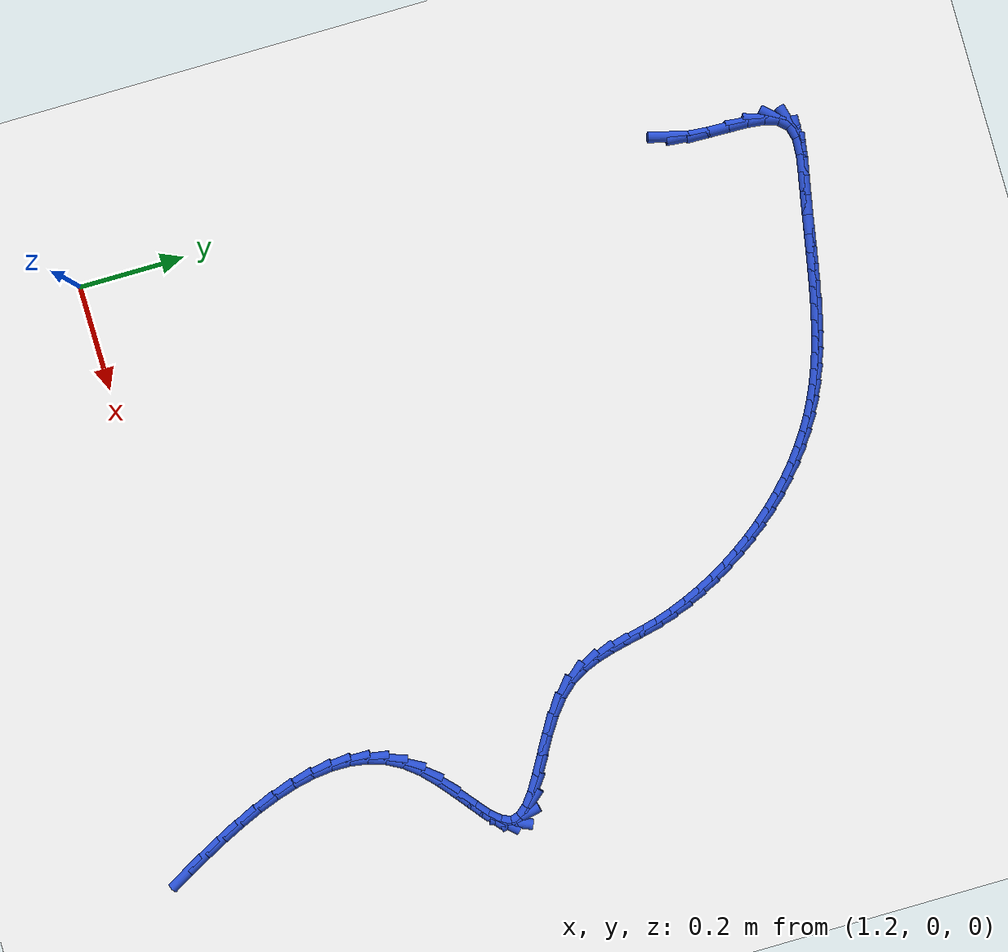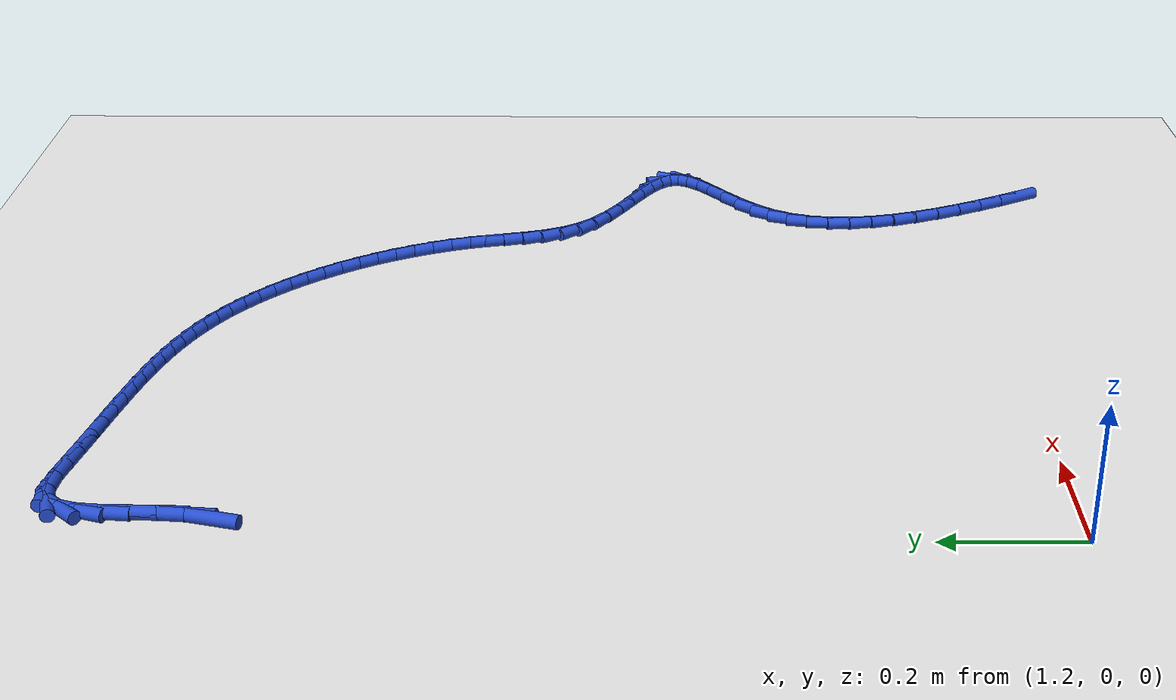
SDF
<sdf version="1.6">
 <world name="default">
  <model name="ground_plane">
   <static>1</static>
   <link name="link">
    <collision name="collision">
     <geometry><plane><normal>0 0 1</normal><size>100 100</size></plane></geometry>
     <surface><friction><ode><mu>100</mu><mu2>50</mu2></ode></friction></surface>
    </collision>
    <visual name="visual">
     <cast_shadows>0</cast_shadows>
     <geometry><plane><normal>0 0 1</normal><size>100 100</size></plane></geometry>
     <material>
      <script><uri>file://media/materials/scripts/gazebo.material</uri><name>Gazebo/WhiteGlow</name></script>
     </material>
    </visual>
   </link>
  </model>
  <model name="line">
   <link name="link_66">
    <pose>1.236424328470539 1.128086141184387 0.01 0 1.57 1.31417227078528</pose>
    <collision name="collision">
     <geometry><cylinder><radius>0.01</radius><length>0.08</length></cylinder></geometry>
    </collision>
    <visual name="visual">
     <material>
      <script><name>Gazebo/Blue</name><uri>file://media/materials/scripts/gazebo.material</uri></script>
     </material>
     <geometry><cylinder><radius>0.01</radius><length>0.08</length></cylinder></geometry>
    </visual>
   </link>
   <link name="link_67">
    <pose>1.2450804907800683 1.1610733174767547 0.01 0 1.57 1.4746304507638437</pose>
    <collision name="collision">
     <geometry><cylinder><radius>0.01</radius><length>0.08</length></cylinder></geometry>
    </collision>
    <visual name="visual">
     <material>
      <script><name>Gazebo/Blue</name><uri>file://media/materials/scripts/gazebo.material</uri></script>
     </material>
     <geometry><cylinder><radius>0.01</radius><length>0.08</length></cylinder></geometry>
    </visual>
   </link>
   <link name="link_68">
    <pose>1.2486395546948186 1.197968794655572 0.01 0 1.57 1.5447316132832647</pose>
    <collision name="collision">
     <geometry><cylinder><radius>0.01</radius><length>0.08</length></cylinder></geometry>
    </collision>
    <visual name="visual">
     <material>
      <script><name>Gazebo/Blue</name><uri>file://media/materials/scripts/gazebo.material</uri></script>
     </material>
     <geometry><cylinder><radius>0.01</radius><length>0.08</length></cylinder></geometry>
    </visual>
   </link>
   <link name="link_69">
    <pose>1.2496355279477291 1.236171696740145 0.01 0 1.57 1.5446060363947451</pose>
    <collision name="collision">
     <geometry><cylinder><radius>0.01</radius><length>0.08</length></cylinder></geometry>
    </collision>
    <visual name="visual">
     <material>
      <script><name>Gazebo/Blue</name><uri>file://media/materials/scripts/gazebo.material</uri></script>
     </material>
     <geometry><cylinder><radius>0.01</radius><length>0.08</length></cylinder></geometry>
    </visual>
   </link>
   <link name="link_70">
    <pose>1.250602418271741 1.2730811477497812 0.01 0 1.57 1.4660230734352857</pose>
    <collision name="collision">
     <geometry><cylinder><radius>0.01</radius><length>0.08</length></cylinder></geometry>
    </collision>
    <visual name="visual">
     <material>
      <script><name>Gazebo/Blue</name><uri>file://media/materials/scripts/gazebo.material</uri></script>
     </material>
     <geometry><cylinder><radius>0.01</radius><length>0.08</length></cylinder></geometry>
    </visual>
   </link>
   <link name="link_71">
    <pose>1.2540742333997934 1.3060962717037867 0.01 0 1.57 1.2602599292706624</pose>
    <collision name="collision">
     <geometry><cylinder><radius>0.01</radius><length>0.08</length></cylinder></geometry>
    </collision>
    <visual name="visual">
     <material>
      <script><name>Gazebo/Blue</name><uri>file://media/materials/scripts/gazebo.material</uri></script>
     </material>
     <geometry><cylinder><radius>0.01</radius><length>0.08</length></cylinder></geometry>
    </visual>
   </link>
   <link name="link_72">
    <pose>1.2625849810648262 1.332616192621468 0.01 0 1.57 0.8253724636693989</pose>
    <collision name="collision">
     <geometry><cylinder><radius>0.01</radius><length>0.08</length></cylinder></geometry>
    </collision>
    <visual name="visual">
     <material>
      <script><name>Gazebo/Blue</name><uri>file://media/materials/scripts/gazebo.material</uri></script>
     </material>
     <geometry><cylinder><radius>0.01</radius><length>0.08</length></cylinder></geometry>
    </visual>
   </link>
   <link name="link_73">
    <pose>1.2786686689997797 1.3500400345221317 0.01 0 1.57 0.26004808370753746</pose>
    <collision name="collision">
     <geometry><cylinder><radius>0.01</radius><length>0.08</length></cylinder></geometry>
    </collision>
    <visual name="visual">
     <material>
      <script><name>Gazebo/Blue</name><uri>file://media/materials/scripts/gazebo.material</uri></script>
     </material>
     <geometry><cylinder><radius>0.01</radius><length>0.08</length></cylinder></geometry>
    </visual>
   </link>
   <link name="link_74">
    <pose>1.3039321545466427 1.3567619666410027 0.01 0 1.57 -0.044521353887577164</pose>
    <collision name="collision">
     <geometry><cylinder><radius>0.01</radius><length>0.08</length></cylinder></geometry>
    </collision>
    <visual name="visual">
     <material>
      <script><name>Gazebo/Blue</name><uri>file://media/materials/scripts/gazebo.material</uri></script>
     </material>
     <geometry><cylinder><radius>0.01</radius><length>0.08</length></cylinder></geometry>
    </visual>
   </link>
   <link name="link_75">
    <pose>1.3361135012512961 1.355328262117658 0.01 0 1.57 -0.16484548316431186</pose>
    <collision name="collision">
     <geometry><cylinder><radius>0.01</radius><length>0.08</length></cylinder></geometry>
    </collision>
    <visual name="visual">
     <material>
      <script><name>Gazebo/Blue</name><uri>file://media/materials/scripts/gazebo.material</uri></script>
     </material>
     <geometry><cylinder><radius>0.01</radius><length>0.08</length></cylinder></geometry>
    </visual>
   </link>
   <link name="link_76">
    <pose>1.3719418113295037 1.349368041226697 0.01 0 1.57 -0.19007756473177292</pose>
    <collision name="collision">
     <geometry><cylinder><radius>0.01</radius><length>0.08</length></cylinder></geometry>
    </collision>
    <visual name="visual">
     <material>
      <script><name>Gazebo/Blue</name><uri>file://media/materials/scripts/gazebo.material</uri></script>
     </material>
     <geometry><cylinder><radius>0.01</radius><length>0.08</length></cylinder></geometry>
    </visual>
   </link>
   <link name="link_77">
    <pose>1.4082590378655195 1.3423805969495262 0.01 0 1.57 -0.18264127013769907</pose>
    <collision name="collision">
     <geometry><cylinder><radius>0.01</radius><length>0.08</length></cylinder></geometry>
    </collision>
    <visual name="visual">
     <material>
      <script><name>Gazebo/Blue</name><uri>file://media/materials/scripts/gazebo.material</uri></script>
     </material>
     <geometry><cylinder><radius>0.01</radius><length>0.08</length></cylinder></geometry>
    </visual>
   </link>
   <link name="link_78">
    <pose>1.4436668522789329 1.3358407885761694 0.01 0 1.57 -0.17837608014636963</pose>
    <collision name="collision">
     <geometry><cylinder><radius>0.01</radius><length>0.08</length></cylinder></geometry>
    </collision>
    <visual name="visual">
     <material>
      <script><name>Gazebo/Blue</name><uri>file://media/materials/scripts/gazebo.material</uri></script>
     </material>
     <geometry><cylinder><radius>0.01</radius><length>0.08</length></cylinder></geometry>
    </visual>
   </link>
   <link name="link_79">
    <pose>1.4781588681465108 1.3296221426476278 0.01 0 1.57 -0.1786200687247203</pose>
    <collision name="collision">
     <geometry><cylinder><radius>0.01</radius><length>0.08</length></cylinder></geometry>
    </collision>
    <visual name="visual">
     <material>
      <script><name>Gazebo/Blue</name><uri>file://media/materials/scripts/gazebo.material</uri></script>
     </material>
     <geometry><cylinder><radius>0.01</radius><length>0.08</length></cylinder></geometry>
    </visual>
   </link>
   <link name="link_80">
    <pose>1.5117667276028126 1.3235544364911285 0.01 0 1.57 -0.1837360471218075</pose>
    <collision name="collision">
     <geometry><cylinder><radius>0.01</radius><length>0.08</length></cylinder></geometry>
    </collision>
    <visual name="visual">
     <material>
      <script><name>Gazebo/Blue</name><uri>file://media/materials/scripts/gazebo.material</uri></script>
     </material>
     <geometry><cylinder><radius>0.01</radius><length>0.08</length></cylinder></geometry>
    </visual>
   </link>
   <link name="link_81">
    <pose>1.544522072782399 1.3174674474338985 0.01 0 1.57 -0.19406924686088387</pose>
    <collision name="collision">
     <geometry><cylinder><radius>0.01</radius><length>0.08</length></cylinder></geometry>
    </collision>
    <visual name="visual">
     <material>
      <script><name>Gazebo/Blue</name><uri>file://media/materials/scripts/gazebo.material</uri></script>
     </material>
     <geometry><cylinder><radius>0.01</radius><length>0.08</length></cylinder></geometry>
    </visual>
   </link>
   <link name="link_82">
    <pose>1.5764565458198294 1.3111909528031653 0.01 0 1.57 -0.20993395660868083</pose>
    <collision name="collision">
     <geometry><cylinder><radius>0.01</radius><length>0.08</length></cylinder></geometry>
    </collision>
    <visual name="visual">
     <material>
      <script><name>Gazebo/Blue</name><uri>file://media/materials/scripts/gazebo.material</uri></script>
     </material>
     <geometry><cylinder><radius>0.01</radius><length>0.08</length></cylinder></geometry>
    </visual>
   </link>
   <link name="link_83">
    <pose>1.6076017888496645 1.3045547299261568 0.01 0 1.57 -0.23159379686316303</pose>
    <collision name="collision">
     <geometry><cylinder><radius>0.01</radius><length>0.08</length></cylinder></geometry>
    </collision>
    <visual name="visual">
     <material>
      <script><name>Gazebo/Blue</name><uri>file://media/materials/scripts/gazebo.material</uri></script>
     </material>
     <geometry><cylinder><radius>0.01</radius><length>0.08</length></cylinder></geometry>
    </visual>
   </link>
   <link name="link_84">
    <pose>1.6379894440064644 1.2973885561300995 0.01 0 1.57 -0.25923455229076714</pose>
    <collision name="collision">
     <geometry><cylinder><radius>0.01</radius><length>0.08</length></cylinder></geometry>
    </collision>
    <visual name="visual">
     <material>
      <script><name>Gazebo/Blue</name><uri>file://media/materials/scripts/gazebo.material</uri></script>
     </material>
     <geometry><cylinder><radius>0.01</radius><length>0.08</length></cylinder></geometry>
    </visual>
   </link>
   <link name="link_85">
    <pose>1.6676511534247884 1.289522208742221 0.01 0 1.57 -0.29292954497921697</pose>
    <collision name="collision">
     <geometry><cylinder><radius>0.01</radius><length>0.08</length></cylinder></geometry>
    </collision>
    <visual name="visual">
     <material>
      <script><name>Gazebo/Blue</name><uri>file://media/materials/scripts/gazebo.material</uri></script>
     </material>
     <geometry><cylinder><radius>0.01</radius><length>0.08</length></cylinder></geometry>
    </visual>
   </link>
   <link name="link_86">
    <pose>1.6966185592391978 1.2807854650897486 0.01 0 1.57 -0.3325994910045407</pose>
    <collision name="collision">
     <geometry><cylinder><radius>0.01</radius><length>0.08</length></cylinder></geometry>
    </collision>
    <visual name="visual">
     <material>
      <script><name>Gazebo/Blue</name><uri>file://media/materials/scripts/gazebo.material</uri></script>
     </material>
     <geometry><cylinder><radius>0.01</radius><length>0.08</length></cylinder></geometry>
    </visual>
   </link>
   <link name="link_87">
    <pose>1.7249233035842524 1.2710081024999094 0.01 0 1.57 -0.3779716671717147</pose>
    <collision name="collision">
     <geometry><cylinder><radius>0.01</radius><length>0.08</length></cylinder></geometry>
    </collision>
    <visual name="visual">
     <material>
      <script><name>Gazebo/Blue</name><uri>file://media/materials/scripts/gazebo.material</uri></script>
     </material>
     <geometry><cylinder><radius>0.01</radius><length>0.08</length></cylinder></geometry>
    </visual>
   </link>
   <link name="link_88">
    <pose>1.7525970285945118 1.2600198982999307 0.01 0 1.57 -0.4285465428269997</pose>
    <collision name="collision">
     <geometry><cylinder><radius>0.01</radius><length>0.08</length></cylinder></geometry>
    </collision>
    <visual name="visual">
     <material>
      <script><name>Gazebo/Blue</name><uri>file://media/materials/scripts/gazebo.material</uri></script>
     </material>
     <geometry><cylinder><radius>0.01</radius><length>0.08</length></cylinder></geometry>
    </visual>
   </link>
   <link name="link_89">
    <pose>1.7796713764045373 1.2476506298170404 0.01 0 1.57 -0.48358255563283375</pose>
    <collision name="collision">
     <geometry><cylinder><radius>0.01</radius><length>0.08</length></cylinder></geometry>
    </collision>
    <visual name="visual">
     <material>
      <script><name>Gazebo/Blue</name><uri>file://media/materials/scripts/gazebo.material</uri></script>
     </material>
     <geometry><cylinder><radius>0.01</radius><length>0.08</length></cylinder></geometry>
    </visual>
   </link>
   <link name="link_90">
    <pose>1.8061779891488878 1.2337300743784647 0.01 0 1.57 -0.542082178485489</pose>
    <collision name="collision">
     <geometry><cylinder><radius>0.01</radius><length>0.08</length></cylinder></geometry>
    </collision>
    <visual name="visual">
     <material>
      <script><name>Gazebo/Blue</name><uri>file://media/materials/scripts/gazebo.material</uri></script>
     </material>
     <geometry><cylinder><radius>0.01</radius><length>0.08</length></cylinder></geometry>
    </visual>
   </link>
   <link name="link_91">
    <pose>1.8321479119988338 1.2180893376820612 0.01 0 1.57 -0.6011089915096659</pose>
    <collision name="collision">
     <geometry><cylinder><radius>0.01</radius><length>0.08</length></cylinder></geometry>
    </collision>
    <visual name="visual">
     <material>
      <script><name>Gazebo/Blue</name><uri>file://media/materials/scripts/gazebo.material</uri></script>
     </material>
     <geometry><cylinder><radius>0.01</radius><length>0.08</length></cylinder></geometry>
    </visual>
   </link>
   <link name="link_92">
    <pose>1.8575684901878986 1.2006567671066073 0.01 0 1.57 -0.6574224614314862</pose>
    <collision name="collision">
     <geometry><cylinder><radius>0.01</radius><length>0.08</length></cylinder></geometry>
    </collision>
    <visual name="visual">
     <material>
      <script><name>Gazebo/Blue</name><uri>file://media/materials/scripts/gazebo.material</uri></script>
     </material>
     <geometry><cylinder><radius>0.01</radius><length>0.08</length></cylinder></geometry>
    </visual>
   </link>
   <link name="link_93">
    <pose>1.8823543651215393 1.1815224915531346 0.01 0 1.57 -0.7112228245387567</pose>
    <collision name="collision">
     <geometry><cylinder><radius>0.01</radius><length>0.08</length></cylinder></geometry>
    </collision>
    <visual name="visual">
     <material>
      <script><name>Gazebo/Blue</name><uri>file://media/materials/scripts/gazebo.material</uri></script>
     </material>
     <geometry><cylinder><radius>0.01</radius><length>0.08</length></cylinder></geometry>
    </visual>
   </link>
   <link name="link_94">
    <pose>1.9064133049955003 1.1607919342800577 0.01 0 1.57 -0.7630013228707332</pose>
    <collision name="collision">
     <geometry><cylinder><radius>0.01</radius><length>0.08</length></cylinder></geometry>
    </collision>
    <visual name="visual">
     <material>
      <script><name>Gazebo/Blue</name><uri>file://media/materials/scripts/gazebo.material</uri></script>
     </material>
     <geometry><cylinder><radius>0.01</radius><length>0.08</length></cylinder></geometry>
    </visual>
   </link>
   <link name="link_95">
    <pose>1.9296530780055277 1.1385705185457904 0.01 0 1.57 -0.8132231414113636</pose>
    <collision name="collision">
     <geometry><cylinder><radius>0.01</radius><length>0.08</length></cylinder></geometry>
    </collision>
    <visual name="visual">
     <material>
      <script><name>Gazebo/Blue</name><uri>file://media/materials/scripts/gazebo.material</uri></script>
     </material>
     <geometry><cylinder><radius>0.01</radius><length>0.08</length></cylinder></geometry>
    </visual>
   </link>
   <link name="link_96">
    <pose>1.951981452347367 1.1149636676087473 0.01 0 1.57 -0.8623288141236749</pose>
    <collision name="collision">
     <geometry><cylinder><radius>0.01</radius><length>0.08</length></cylinder></geometry>
    </collision>
    <visual name="visual">
     <material>
      <script><name>Gazebo/Blue</name><uri>file://media/materials/scripts/gazebo.material</uri></script>
     </material>
     <geometry><cylinder><radius>0.01</radius><length>0.08</length></cylinder></geometry>
    </visual>
   </link>
   <link name="link_97">
    <pose>1.9733061962167646 1.090076804727343 0.01 0 1.57 -0.9107373965853429</pose>
    <collision name="collision">
     <geometry><cylinder><radius>0.01</radius><length>0.08</length></cylinder></geometry>
    </collision>
    <visual name="visual">
     <material>
      <script><name>Gazebo/Blue</name><uri>file://media/materials/scripts/gazebo.material</uri></script>
     </material>
     <geometry><cylinder><radius>0.01</radius><length>0.08</length></cylinder></geometry>
    </visual>
   </link>
   <link name="link_98">
    <pose>1.9935350778094652 1.064015353159992 0.01 0 1.57 -0.9588504759626253</pose>
    <collision name="collision">
     <geometry><cylinder><radius>0.01</radius><length>0.08</length></cylinder></geometry>
    </collision>
    <visual name="visual">
     <material>
      <script><name>Gazebo/Blue</name><uri>file://media/materials/scripts/gazebo.material</uri></script>
     </material>
     <geometry><cylinder><radius>0.01</radius><length>0.08</length></cylinder></geometry>
    </visual>
   </link>
   <link name="link_99">
    <pose>2.0125758653212156 1.0368847361651086 0.01 0 1.57 -1.0070563765401508</pose>
    <collision name="collision">
     <geometry><cylinder><radius>0.01</radius><length>0.08</length></cylinder></geometry>
    </collision>
    <visual name="visual">
     <material>
      <script><name>Gazebo/Blue</name><uri>file://media/materials/scripts/gazebo.material</uri></script>
     </material>
     <geometry><cylinder><radius>0.01</radius><length>0.08</length></cylinder></geometry>
    </visual>
   </link>
   <link name="link_100">
    <pose>2.03033632694776 1.0087903770011064 0.01 0 1.57 -1.0557340883597155</pose>
    <collision name="collision">
     <geometry><cylinder><radius>0.01</radius><length>0.08</length></cylinder></geometry>
    </collision>
    <visual name="visual">
     <material>
      <script><name>Gazebo/Blue</name><uri>file://media/materials/scripts/gazebo.material</uri></script>
     </material>
     <geometry><cylinder><radius>0.01</radius><length>0.08</length></cylinder></geometry>
    </visual>
   </link>
   <link name="link_101">
    <pose>2.0467242308848457 0.9798376989264017 0.01 0 1.57 -1.1052565218094876</pose>
    <collision name="collision">
     <geometry><cylinder><radius>0.01</radius><length>0.08</length></cylinder></geometry>
    </collision>
    <visual name="visual">
     <material>
      <script><name>Gazebo/Blue</name><uri>file://media/materials/scripts/gazebo.material</uri></script>
     </material>
     <geometry><cylinder><radius>0.01</radius><length>0.08</length></cylinder></geometry>
    </visual>
   </link>
   <link name="link_102">
    <pose>2.0616473453282174 0.9501321251994065 0.01 0 1.57 -1.1559926918693744</pose>
    <collision name="collision">
     <geometry><cylinder><radius>0.01</radius><length>0.08</length></cylinder></geometry>
    </collision>
    <visual name="visual">
     <material>
      <script><name>Gazebo/Blue</name><uri>file://media/materials/scripts/gazebo.material</uri></script>
     </material>
     <geometry><cylinder><radius>0.01</radius><length>0.08</length></cylinder></geometry>
    </visual>
   </link>
   <link name="link_103">
    <pose>2.0750134384736216 0.9197790790785367 0.01 0 1.57 -1.208308377729799</pose>
    <collision name="collision">
     <geometry><cylinder><radius>0.01</radius><length>0.08</length></cylinder></geometry>
    </collision>
    <visual name="visual">
     <material>
      <script><name>Gazebo/Blue</name><uri>file://media/materials/scripts/gazebo.material</uri></script>
     </material>
     <geometry><cylinder><radius>0.01</radius><length>0.08</length></cylinder></geometry>
    </visual>
   </link>
   <link name="link_104">
    <pose>2.086730278516803 0.8888839838222061 0.01 0 1.57 -1.2625647016944848</pose>
    <collision name="collision">
     <geometry><cylinder><radius>0.01</radius><length>0.08</length></cylinder></geometry>
    </collision>
    <visual name="visual">
     <material>
      <script><name>Gazebo/Blue</name><uri>file://media/materials/scripts/gazebo.material</uri></script>
     </material>
     <geometry><cylinder><radius>0.01</radius><length>0.08</length></cylinder></geometry>
    </visual>
   </link>
   <link name="link_105">
    <pose>2.0967056336535084 0.8575522626888294 0.01 0 1.57 -1.3186011748083555</pose>
    <collision name="collision">
     <geometry><cylinder><radius>0.01</radius><length>0.08</length></cylinder></geometry>
    </collision>
    <visual name="visual">
     <material>
      <script><name>Gazebo/Blue</name><uri>file://media/materials/scripts/gazebo.material</uri></script>
     </material>
     <geometry><cylinder><radius>0.01</radius><length>0.08</length></cylinder></geometry>
    </visual>
   </link>
   <link name="link_106">
    <pose>2.104863659067642 0.8258929271861877 0.01 0 1.57 -1.356419278800831</pose>
    <collision name="collision">
     <geometry><cylinder><radius>0.01</radius><length>0.08</length></cylinder></geometry>
    </collision>
    <visual name="visual">
     <material>
      <script><name>Gazebo/Blue</name><uri>file://media/materials/scripts/gazebo.material</uri></script>
     </material>
     <geometry><cylinder><radius>0.01</radius><length>0.08</length></cylinder></geometry>
    </visual>
   </link>
   <link name="link_107">
    <pose>2.1117734602987333 0.7941562132302831 0.01 0 1.57 -1.3490956272420958</pose>
    <collision name="collision">
     <geometry><cylinder><radius>0.01</radius><length>0.08</length></cylinder></geometry>
    </collision>
    <visual name="visual">
     <material>
      <script><name>Gazebo/Blue</name><uri>file://media/materials/scripts/gazebo.material</uri></script>
     </material>
     <geometry><cylinder><radius>0.01</radius><length>0.08</length></cylinder></geometry>
    </visual>
   </link>
   <link name="link_108">
    <pose>2.118846558977456 0.7627768201038079 0.01 0 1.57 -1.2934347474085959</pose>
    <collision name="collision">
     <geometry><cylinder><radius>0.01</radius><length>0.08</length></cylinder></geometry>
    </collision>
    <visual name="visual">
     <material>
      <script><name>Gazebo/Blue</name><uri>file://media/materials/scripts/gazebo.material</uri></script>
     </material>
     <geometry><cylinder><radius>0.01</radius><length>0.08</length></cylinder></geometry>
    </visual>
   </link>
   <link name="link_109">
    <pose>2.1275512422155782 0.7322018769941832 0.01 0 1.57 -1.1880808495444093</pose>
    <collision name="collision">
     <geometry><cylinder><radius>0.01</radius><length>0.08</length></cylinder></geometry>
    </collision>
    <visual name="visual">
     <material>
      <script><name>Gazebo/Blue</name><uri>file://media/materials/scripts/gazebo.material</uri></script>
     </material>
     <geometry><cylinder><radius>0.01</radius><length>0.08</length></cylinder></geometry>
    </visual>
   </link>
   <link name="link_110">
    <pose>2.139355797124869 0.7028785130888301 0.01 0 1.57 -1.035773005852378</pose>
    <collision name="collision">
     <geometry><cylinder><radius>0.01</radius><length>0.08</length></cylinder></geometry>
    </collision>
    <visual name="visual">
     <material>
      <script><name>Gazebo/Blue</name><uri>file://media/materials/scripts/gazebo.material</uri></script>
     </material>
     <geometry><cylinder><radius>0.01</radius><length>0.08</length></cylinder></geometry>
    </visual>
   </link>
   <link name="link_111">
    <pose>2.155728510817096 0.6752538575751696 0.01 0 1.57 -0.8499120745438451</pose>
    <collision name="collision">
     <geometry><cylinder><radius>0.01</radius><length>0.08</length></cylinder></geometry>
    </collision>
    <visual name="visual">
     <material>
      <script><name>Gazebo/Blue</name><uri>file://media/materials/scripts/gazebo.material</uri></script>
     </material>
     <geometry><cylinder><radius>0.01</radius><length>0.08</length></cylinder></geometry>
    </visual>
   </link>
   <link name="link_112">
    <pose>2.1781186620877655 0.6497709351394305 0.01 0 1.57 -0.6836466322014061</pose>
    <collision name="collision">
     <geometry><cylinder><radius>0.01</radius><length>0.08</length></cylinder></geometry>
    </collision>
    <visual name="visual">
     <material>
      <script><name>Gazebo/Blue</name><uri>file://media/materials/scripts/gazebo.material</uri></script>
     </material>
     <geometry><cylinder><radius>0.01</radius><length>0.08</length></cylinder></geometry>
    </visual>
   </link>
   <link name="link_113">
    <pose>2.2065914030030074 0.6265738934009113 0.01 0 1.57 -0.5818828889376121</pose>
    <collision name="collision">
     <geometry><cylinder><radius>0.01</radius><length>0.08</length></cylinder></geometry>
    </collision>
    <visual name="visual">
     <material>
      <script><name>Gazebo/Blue</name><uri>file://media/materials/scripts/gazebo.material</uri></script>
     </material>
     <geometry><cylinder><radius>0.01</radius><length>0.08</length></cylinder></geometry>
    </visual>
   </link>
   <link name="link_114">
    <pose>2.2389132712080912 0.6053105358786731 0.01 0 1.57 -0.5293622907740204</pose>
    <collision name="collision">
     <geometry><cylinder><radius>0.01</radius><length>0.08</length></cylinder></geometry>
    </collision>
    <visual name="visual">
     <material>
      <script><name>Gazebo/Blue</name><uri>file://media/materials/scripts/gazebo.material</uri></script>
     </material>
     <geometry><cylinder><radius>0.01</radius><length>0.08</length></cylinder></geometry>
    </visual>
   </link>
   <link name="link_115">
    <pose>2.272634014501411 0.5855818542556932 0.01 0 1.57 -0.517409263325786</pose>
    <collision name="collision">
     <geometry><cylinder><radius>0.01</radius><length>0.08</length></cylinder></geometry>
    </collision>
    <visual name="visual">
     <material>
      <script><name>Gazebo/Blue</name><uri>file://media/materials/scripts/gazebo.material</uri></script>
     </material>
     <geometry><cylinder><radius>0.01</radius><length>0.08</length></cylinder></geometry>
    </visual>
   </link>
   <link name="link_116">
    <pose>2.305303380681366 0.5669888402149501 0.01 0 1.57 -0.5493384923049089</pose>
    <collision name="collision">
     <geometry><cylinder><radius>0.01</radius><length>0.08</length></cylinder></geometry>
    </collision>
    <visual name="visual">
     <material>
      <script><name>Gazebo/Blue</name><uri>file://media/materials/scripts/gazebo.material</uri></script>
     </material>
     <geometry><cylinder><radius>0.01</radius><length>0.08</length></cylinder></geometry>
    </visual>
   </link>
   <link name="link_117">
    <pose>2.33447111754635 0.549132485439422 0.01 0 1.57 -0.6464391462515996</pose>
    <collision name="collision">
     <geometry><cylinder><radius>0.01</radius><length>0.08</length></cylinder></geometry>
    </collision>
    <visual name="visual">
     <material>
      <script><name>Gazebo/Blue</name><uri>file://media/materials/scripts/gazebo.material</uri></script>
     </material>
     <geometry><cylinder><radius>0.01</radius><length>0.08</length></cylinder></geometry>
    </visual>
   </link>
   <link name="link_118">
    <pose>2.3576869728947623 0.531613781612086 0.01 0 1.57 -0.8705887127375459</pose>
    <collision name="collision">
     <geometry><cylinder><radius>0.01</radius><length>0.08</length></cylinder></geometry>
    </collision>
    <visual name="visual">
     <material>
      <script><name>Gazebo/Blue</name><uri>file://media/materials/scripts/gazebo.material</uri></script>
     </material>
     <geometry><cylinder><radius>0.01</radius><length>0.08</length></cylinder></geometry>
    </visual>
   </link>
   <link name="link_119">
    <pose>2.3725006945249993 0.5140337204159208 0.01 0 1.57 -1.3545592338157029</pose>
    <collision name="collision">
     <geometry><cylinder><radius>0.01</radius><length>0.08</length></cylinder></geometry>
    </collision>
    <visual name="visual">
     <material>
      <script><name>Gazebo/Blue</name><uri>file://media/materials/scripts/gazebo.material</uri></script>
     </material>
     <geometry><cylinder><radius>0.01</radius><length>0.08</length></cylinder></geometry>
    </visual>
   </link>
   <link name="link_120">
    <pose>2.3764636520064064 0.49599335216388657 0.01 0 1.57 1.1659252105672986</pose>
    <collision name="collision">
     <geometry><cylinder><radius>0.01</radius><length>0.08</length></cylinder></geometry>
    </collision>
    <visual name="visual">
     <material>
      <script><name>Gazebo/Blue</name><uri>file://media/materials/scripts/gazebo.material</uri></script>
     </material>
     <geometry><cylinder><radius>0.01</radius><length>0.08</length></cylinder></geometry>
    </visual>
   </link>
   <link name="link_121">
    <pose>2.3683837421985667 0.47713915292616876 0.01 0 1.57 0.8405675061314439</pose>
    <collision name="collision">
     <geometry><cylinder><radius>0.01</radius><length>0.08</length></cylinder></geometry>
    </collision>
    <visual name="visual">
     <material>
      <script><name>Gazebo/Blue</name><uri>file://media/materials/scripts/gazebo.material</uri></script>
     </material>
     <geometry><cylinder><radius>0.01</radius><length>0.08</length></cylinder></geometry>
    </visual>
   </link>
   <link name="link_122">
    <pose>2.350571213728977 0.45724421518817654 0.01 0 1.57 0.7093213857581646</pose>
    <collision name="collision">
     <geometry><cylinder><radius>0.01</radius><length>0.08</length></cylinder></geometry>
    </collision>
    <visual name="visual">
     <material>
      <script><name>Gazebo/Blue</name><uri>file://media/materials/scripts/gazebo.material</uri></script>
     </material>
     <geometry><cylinder><radius>0.01</radius><length>0.08</length></cylinder></geometry>
    </visual>
   </link>
   <link name="link_123">
    <pose>2.325941736473841 0.436103518519568 0.01 0 1.57 0.6697386404321186</pose>
    <collision name="collision">
     <geometry><cylinder><radius>0.01</radius><length>0.08</length></cylinder></geometry>
    </collision>
    <visual name="visual">
     <material>
      <script><name>Gazebo/Blue</name><uri>file://media/materials/scripts/gazebo.material</uri></script>
     </material>
     <geometry><cylinder><radius>0.01</radius><length>0.08</length></cylinder></geometry>
    </visual>
   </link>
   <link name="link_124">
    <pose>2.297410980309362 0.4135120424900017 0.01 0 1.57 0.6877054456789582</pose>
    <collision name="collision">
     <geometry><cylinder><radius>0.01</radius><length>0.08</length></cylinder></geometry>
    </collision>
    <visual name="visual">
     <material>
      <script><name>Gazebo/Blue</name><uri>file://media/materials/scripts/gazebo.material</uri></script>
     </material>
     <geometry><cylinder><radius>0.01</radius><length>0.08</length></cylinder></geometry>
    </visual>
   </link>
   <link name="link_125">
    <pose>2.2678946151117443 0.38926476666913506 0.01 0 1.57 0.7578750879003979</pose>
    <collision name="collision">
     <geometry><cylinder><radius>0.01</radius><length>0.08</length></cylinder></geometry>
    </collision>
    <visual name="visual">
     <material>
      <script><name>Gazebo/Blue</name><uri>file://media/materials/scripts/gazebo.material</uri></script>
     </material>
     <geometry><cylinder><radius>0.01</radius><length>0.08</length></cylinder></geometry>
    </visual>
   </link>
   <link name="link_126">
    <pose>2.2403083107571886 0.3631566706266262 0.01 0 1.57 0.8907965408205063</pose>
    <collision name="collision">
     <geometry><cylinder><radius>0.01</radius><length>0.08</length></cylinder></geometry>
    </collision>
    <visual name="visual">
     <material>
      <script><name>Gazebo/Blue</name><uri>file://media/materials/scripts/gazebo.material</uri></script>
     </material>
     <geometry><cylinder><radius>0.01</radius><length>0.08</length></cylinder></geometry>
    </visual>
   </link>
   <link name="link_127">
    <pose>2.21752897291016 0.33498746591537065 0.01 0 1.57 1.07088563529424</pose>
    <collision name="collision">
     <geometry><cylinder><radius>0.01</radius><length>0.08</length></cylinder></geometry>
    </collision>
    <visual name="visual">
     <material>
      <script><name>Gazebo/Blue</name><uri>file://media/materials/scripts/gazebo.material</uri></script>
     </material>
     <geometry><cylinder><radius>0.01</radius><length>0.08</length></cylinder></geometry>
    </visual>
   </link>
   <link name="link_128">
    <pose>2.201003529603055 0.30473142278250664 0.01 0 1.57 1.2511988142624872</pose>
    <collision name="collision">
     <geometry><cylinder><radius>0.01</radius><length>0.08</length></cylinder></geometry>
    </collision>
    <visual name="visual">
     <material>
      <script><name>Gazebo/Blue</name><uri>file://media/materials/scripts/gazebo.material</uri></script>
     </material>
     <geometry><cylinder><radius>0.01</radius><length>0.08</length></cylinder></geometry>
    </visual>
   </link>
   <link name="link_129">
    <pose>2.190364664249171 0.2725842779964977 0.01 0 1.57 1.4172159445539934</pose>
    <collision name="collision">
     <geometry><cylinder><radius>0.01</radius><length>0.08</length></cylinder></geometry>
    </collision>
    <visual name="visual">
     <material>
      <script><name>Gazebo/Blue</name><uri>file://media/materials/scripts/gazebo.material</uri></script>
     </material>
     <geometry><cylinder><radius>0.01</radius><length>0.08</length></cylinder></geometry>
    </visual>
   </link>
   <link name="link_130">
    <pose>2.1851280752978735 0.23875604878872697 0.01 0 1.57 1.5617704968271433</pose>
    <collision name="collision">
     <geometry><cylinder><radius>0.01</radius><length>0.08</length></cylinder></geometry>
    </collision>
    <visual name="visual">
     <material>
      <script><name>Gazebo/Blue</name><uri>file://media/materials/scripts/gazebo.material</uri></script>
     </material>
     <geometry><cylinder><radius>0.01</radius><length>0.08</length></cylinder></geometry>
    </visual>
   </link>
   <link name="link_131">
    <pose>2.184809461198525 0.20345675239057753 0.01 0 1.57 -1.4587127977229672</pose>
    <collision name="collision">
     <geometry><cylinder><radius>0.01</radius><length>0.08</length></cylinder></geometry>
    </collision>
    <visual name="visual">
     <material>
      <script><name>Gazebo/Blue</name><uri>file://media/materials/scripts/gazebo.material</uri></script>
     </material>
     <geometry><cylinder><radius>0.01</radius><length>0.08</length></cylinder></geometry>
    </visual>
   </link>
   <link name="link_132">
    <pose>2.1889245204004912 0.1668964060334324 0.01 0 1.57 -1.3595797148397635</pose>
    <collision name="collision">
     <geometry><cylinder><radius>0.01</radius><length>0.08</length></cylinder></geometry>
    </collision>
    <visual name="visual">
     <material>
      <script><name>Gazebo/Blue</name><uri>file://media/materials/scripts/gazebo.material</uri></script>
     </material>
     <geometry><cylinder><radius>0.01</radius><length>0.08</length></cylinder></geometry>
    </visual>
   </link>
   <link name="link_133">
    <pose>2.1969889513531347 0.1292850269486751 0.01 0 1.57 -1.2794878748817897</pose>
    <collision name="collision">
     <geometry><cylinder><radius>0.01</radius><length>0.08</length></cylinder></geometry>
    </collision>
    <visual name="visual">
     <material>
      <script><name>Gazebo/Blue</name><uri>file://media/materials/scripts/gazebo.material</uri></script>
     </material>
     <geometry><cylinder><radius>0.01</radius><length>0.08</length></cylinder></geometry>
    </visual>
   </link>
   <link name="link_134">
    <pose>2.2085184525058206 0.0908326323676876 0.01 0 1.57 -1.215304776820275</pose>
    <collision name="collision">
     <geometry><cylinder><radius>0.01</radius><length>0.08</length></cylinder></geometry>
    </collision>
    <visual name="visual">
     <material>
      <script><name>Gazebo/Blue</name><uri>file://media/materials/scripts/gazebo.material</uri></script>
     </material>
     <geometry><cylinder><radius>0.01</radius><length>0.08</length></cylinder></geometry>
    </visual>
   </link>
   <link name="link_135">
    <pose>2.223028722307911 0.051749239521853466 0.01 0 1.57 -1.1642741486758332</pose>
    <collision name="collision">
     <geometry><cylinder><radius>0.01</radius><length>0.08</length></cylinder></geometry>
    </collision>
    <visual name="visual">
     <material>
      <script><name>Gazebo/Blue</name><uri>file://media/materials/scripts/gazebo.material</uri></script>
     </material>
     <geometry><cylinder><radius>0.01</radius><length>0.08</length></cylinder></geometry>
    </visual>
   </link>
   <link name="link_136">
    <pose>2.240035459208773 0.012244865642555783 0.01 0 1.57 -1.1241865811810259</pose>
    <collision name="collision">
     <geometry><cylinder><radius>0.01</radius><length>0.08</length></cylinder></geometry>
    </collision>
    <visual name="visual">
     <material>
      <script><name>Gazebo/Blue</name><uri>file://media/materials/scripts/gazebo.material</uri></script>
     </material>
     <geometry><cylinder><radius>0.01</radius><length>0.08</length></cylinder></geometry>
    </visual>
   </link>
   <link name="link_137">
    <pose>2.259054361657769 -0.02747047203882229 0.01 0 1.57 -1.09337425594123</pose>
    <collision name="collision">
     <geometry><cylinder><radius>0.01</radius><length>0.08</length></cylinder></geometry>
    </collision>
    <visual name="visual">
     <material>
      <script><name>Gazebo/Blue</name><uri>file://media/materials/scripts/gazebo.material</uri></script>
     </material>
     <geometry><cylinder><radius>0.01</radius><length>0.08</length></cylinder></geometry>
    </visual>
   </link>
   <link name="link_138">
    <pose>2.2796011281042623 -0.06718675629089788 0.01 0 1.57 -1.070651308428117</pose>
    <collision name="collision">
     <geometry><cylinder><radius>0.01</radius><length>0.08</length></cylinder></geometry>
    </collision>
    <visual name="visual">
     <material>
      <script><name>Gazebo/Blue</name><uri>file://media/materials/scripts/gazebo.material</uri></script>
     </material>
     <geometry><cylinder><radius>0.01</radius><length>0.08</length></cylinder></geometry>
    </visual>
   </link>
   <link name="link_139">
    <pose>2.301191456997618 -0.10669396988228784 0.01 0 1.57 -1.0552540604216625</pose>
    <collision name="collision">
     <geometry><cylinder><radius>0.01</radius><length>0.08</length></cylinder></geometry>
    </collision>
    <visual name="visual">
     <material>
      <script><name>Gazebo/Blue</name><uri>file://media/materials/scripts/gazebo.material</uri></script>
     </material>
     <geometry><cylinder><radius>0.01</radius><length>0.08</length></cylinder></geometry>
    </visual>
   </link>
  </model>
 </world>
</sdf>
